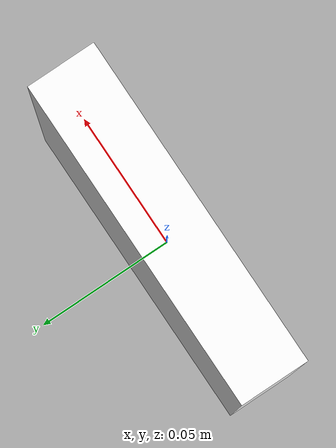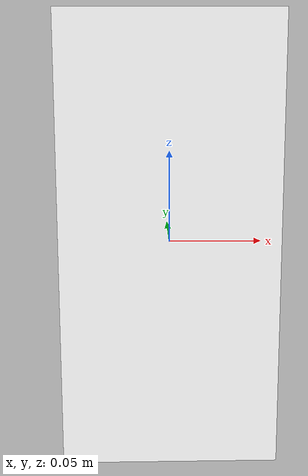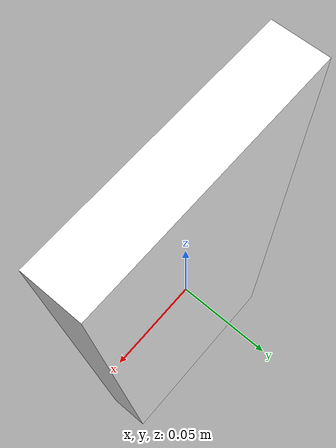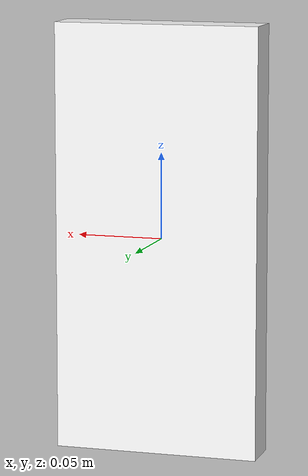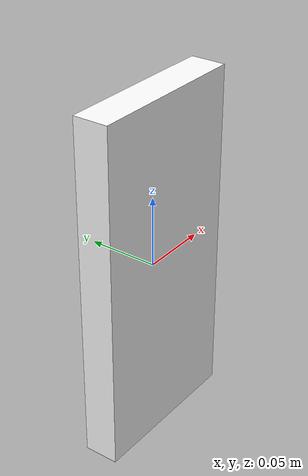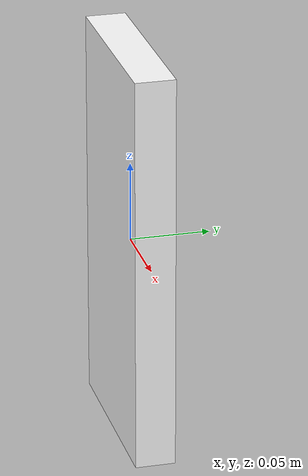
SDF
<?xml version='1.0'?>
<sdf version='1.6'>
  <model name='april_tag_0'>
    <link name='box'>
      <pose frame=''>0 0 0 0 -0 0</pose>
      <self_collide>0</self_collide>
      <kinematic>0</kinematic>
      <visual name='visual'>
        <geometry>
          <box>
            <size>0.12 0.025 0.25</size>
          </box>
        </geometry>
        <material>
          <script>
            <uri>model//april_tag_0/materials/scripts</uri>
            <uri>model://april_tag_0/materials/textures</uri>
            <name>april_tag_0</name>
          </script>
          <ambient>1 1 1 1</ambient>
          <diffuse>1 1 1 1</diffuse>
          <specular>0 0 0 1</specular>
          <emissive>0 0 0 1</emissive>
        </material>
        <pose frame=''>0 0 0 0 -0 0</pose>
        <cast_shadows>1</cast_shadows>
        <transparency>0</transparency>
      </visual>
    </link>
    <static>1</static>
    <allow_auto_disable>1</allow_auto_disable>
  </model>
</sdf>
